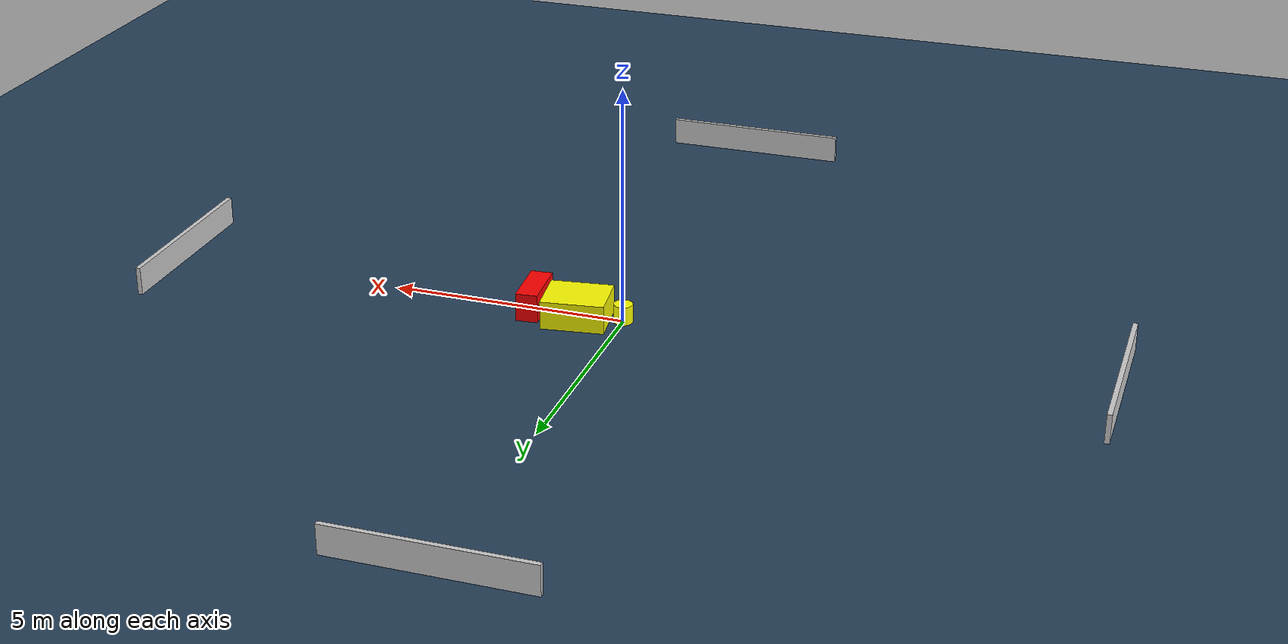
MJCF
<?xml version="1.0" ?>
<mujoco model="generated_environment">
  <option timestep="0.01" integrator="RK4" cone="elliptic"/>
  <default>
    <geom density="1"/>
  </default>
  <asset>
    <texture builtin="gradient" height="3072" name="skybox" rgb1="0.3 0.5 0.7" rgb2="0 0 0" type="skybox" width="512"/>
    <texture builtin="checker" height="300" name="groundplane" rgb1="0.2 0.3 0.4" rgb2="0.1 0.2 0.3" type="2d" width="300"/>
    <material name="groundplane" reflectance="0.2" texrepeat="5 5" texture="groundplane"/>
  </asset>
  <worldbody>
    <light dir="0 0 -1" directional="true" pos="0 0 1.5"/>
    <geom condim="3" friction="0.5 0.005 0.001" material="groundplane" name="floor" pos="0 0 0" size="0 0 0.05" type="plane"/>
    <body name="walls">
      <geom name="wall_1" condim="4" pos="-10.0 0.0 0.3" rgba="0.800000011920929 0.800000011920929 0.800000011920929 1.0" size="0.05 2.0 0.3" type="box"/>
      <geom name="wall_2" condim="4" pos="10.0 0.0 0.3" rgba="0.800000011920929 0.800000011920929 0.800000011920929 1.0" size="0.05 2.0 0.3" type="box"/>
      <geom name="wall_3" condim="4" pos="0.0 -10.0 0.3" rgba="0.800000011920929 0.800000011920929 0.800000011920929 1.0" size="2.0 0.05 0.3" type="box"/>
      <geom name="wall_4" condim="4" pos="0.0 10.0 0.3" rgba="0.800000011920929 0.800000011920929 0.800000011920929 1.0" size="2.0 0.05 0.3" type="box"/>
    </body>
    <body name="robot">
      <joint name="joint_x" type="slide" pos="0 0 0" axis="1 0 0"/>
      <joint name="joint_y" type="slide" pos="0 0 0" axis="0 1 0"/>
      <geom name="robot" type="cylinder" pos="0.0 0.0 0.2" size="0.2 0.2 0.0" mass="5.0" friction="1.0 0.005 0.0001" condim="4" rgba="1.0 1.0 0.0 1.0"/>
    </body>
    <body name="obstacle_1_movable">
      <geom name="obstacle_1_movable" condim="4" pos="0.909525831763947 0.23540127518890205 0.3" euler="0 0 187.47825857689008" friction="0.0 0.005 0.001" rgba="1.0 1.0 0.0 1.0" size="0.6593478772643155 0.539738724641018 0.3" type="box" mass="0.1"/>
      <joint type="free"/>
    </body>
    <body name="obstacle_2_static">
      <geom name="obstacle_2_static" condim="4" pos="1.911685652056399 0.05196969114042239 0.3" euler="0 0 184.746826813431" friction="0.0 0.005 0.001" rgba="1.0 0.0 0.0 1.0" size="0.2296640698070517 0.5847512707467546 0.3" type="box"/>
    </body>
  </worldbody>
  <actuator>
    <motor name="actuator_x" joint="joint_x" gear="1" ctrlrange="-1 1"/>
    <motor name="actuator_y" joint="joint_y" gear="1" ctrlrange="-1 1"/>
  </actuator>
</mujoco>
